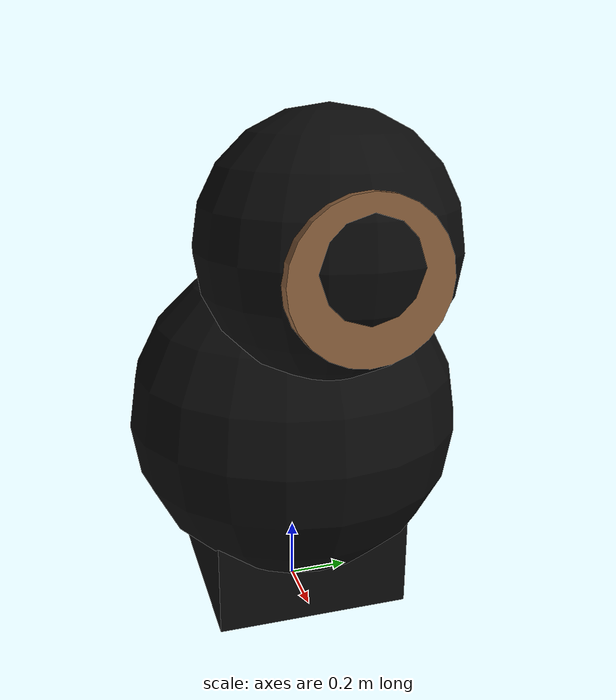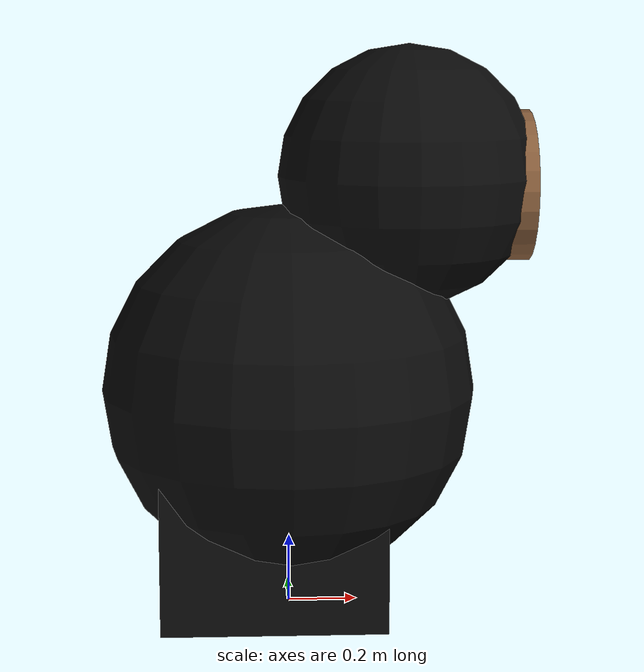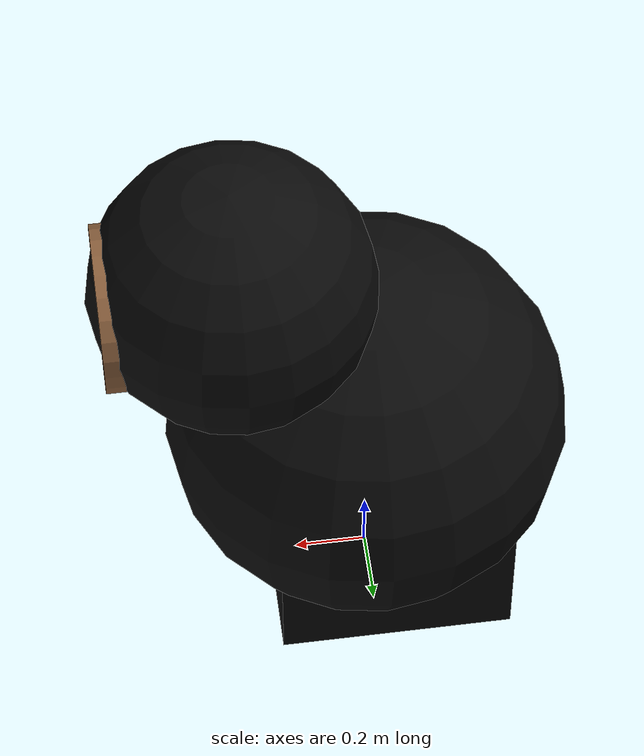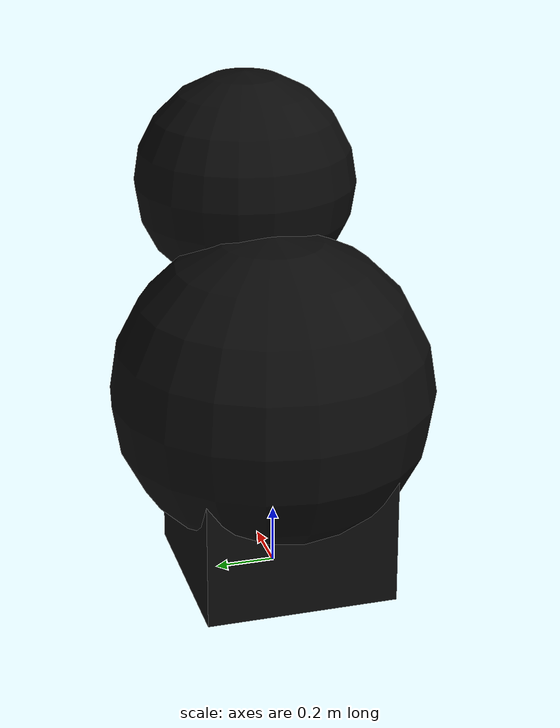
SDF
<?xml version="1.0"?>
<sdf version="1.9">
  <model name="monkey">
    <static>true</static>
    <link name="body">
      <visual name="torso">
        <pose>0 0 0.65 0 0 0</pose>
        <geometry><sphere><radius>0.55</radius></sphere></geometry>
        <material><ambient>0.02 0.02 0.02 1</ambient><diffuse>0.04 0.04 0.04 1</diffuse></material>
      </visual>
      <visual name="head">
        <pose>0.35 0 1.28 0 0 0</pose>
        <geometry><sphere><radius>0.38</radius></sphere></geometry>
        <material><ambient>0.02 0.02 0.02 1</ambient><diffuse>0.04 0.04 0.04 1</diffuse></material>
      </visual>
      <visual name="face">
        <pose>0.66 0 1.25 0 1.5708 0</pose>
        <geometry><cylinder><radius>0.22</radius><length>0.08</length></cylinder></geometry>
        <material><ambient>0.45 0.31 0.2 1</ambient><diffuse>0.55 0.38 0.24 1</diffuse></material>
      </visual>
      <visual name="legs">
        <pose>-0.05 0 0.25 0 0 0</pose>
        <geometry><box><size>0.65 0.65 0.5</size></box></geometry>
        <material><ambient>0.02 0.02 0.02 1</ambient><diffuse>0.04 0.04 0.04 1</diffuse></material>
      </visual>
    </link>
  </model>
</sdf>
